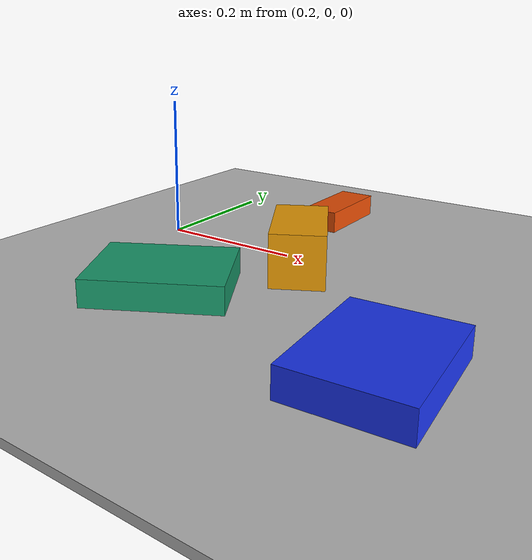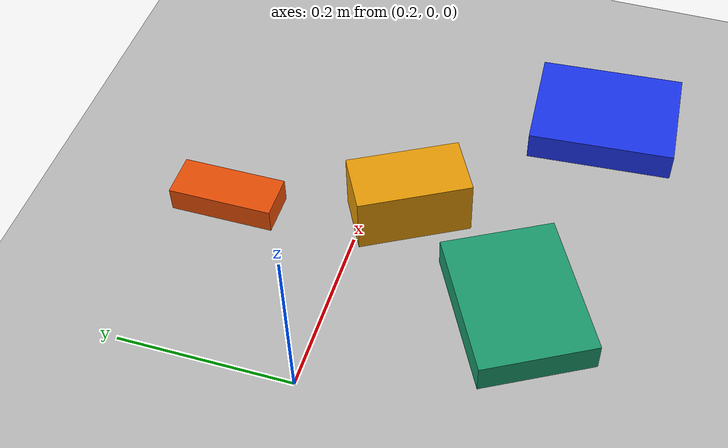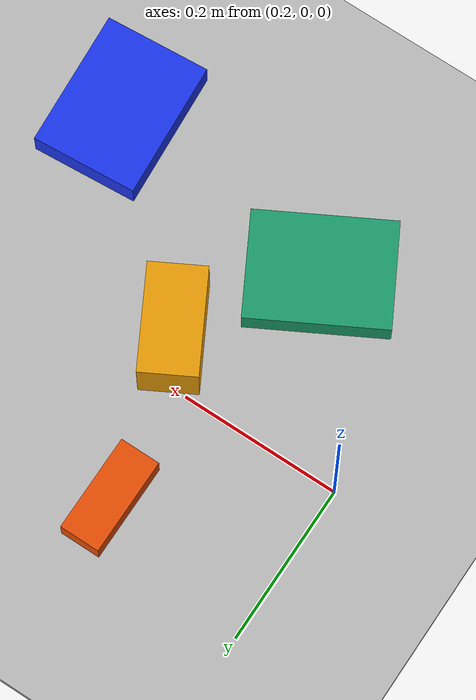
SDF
<?xml version="1.0" ?>
<sdf version="1.5">
  <world name="default">
    <scene>
      <ambient>0.4 0.4 0.4 1</ambient>
      <background>0.25 0.25 0.25 1</background>
      <shadows>true</shadows>
    </scene>
    <light type="directional" name="some_light">
      <pose>0.0 0.0 3.7 0 0 0</pose>
      <diffuse>0.7 0.7 0.7 1</diffuse>
      <specular>1 1 1 1</specular>
      <direction>0 0 -1</direction>
    </light>

    <include>
      <uri>model://ground_plane</uri>
    </include>
    <include>
      <uri>model://sun</uri>
    </include>
    <model name="table">
      <pose>0 0 0 0 0 0</pose>
      <link name="plane">
        <inertial>
          <inertia>
            <ixx>100</ixx>
            <ixy>0</ixy>
            <ixz>0</ixz>
            <iyy>100</iyy>
            <iyz>0</iyz>
            <izz>1</izz>
          </inertia>
          <mass>1000.0</mass>
        </inertial>
        <collision name="geom">
          <geometry>
            <box>
              <size>10 10 0.01</size>
            </box>
          </geometry>
        </collision>
        <visual name="visual">
          <geometry>
            <box>
              <size>10 10 0.01</size>
            </box>
          </geometry>
          <material>
            <script>Gazebo/WoodPallet</script>
          </material>
        </visual>
      </link>
      <static>true</static>
    </model>

    <model name="box_orange">
      <pose>0.4 0.15 0.03 0 0 0</pose>
      <link name="plane">
        <inertial>
          <inertia>
            <ixx>1</ixx>
            <ixy>0</ixy>
            <ixz>0</ixz>
            <iyy>1</iyy>
            <iyz>0</iyz>
            <izz>1</izz>
          </inertia>
          <mass>0.3</mass>
        </inertial>
        <collision name="geom">
          <geometry>
            <box>
              <size>0.05 0.12 0.03</size>
            </box>
          </geometry>
        </collision>
        <visual name="visual">
          <geometry>
            <box>
              <size>0.05 0.12 0.03</size>
            </box>
          </geometry>
          <material>
            <ambient>1.0 0.4 0.05 1</ambient>
            <diffuse>0.9 0.3 0.02 1</diffuse>
            <specular>0.1 0 0 0</specular>
            <emissive>0 0 0 1</emissive>
          </material>
        </visual>
      </link>
      <static>false</static>
    </model>

    <model name="box_yellow">
      <pose>0.45 -0.05 0.03 0 0 0.5</pose>
      <link name="plane">
        <inertial>
          <inertia>
            <ixx>1</ixx>
            <ixy>0</ixy>
            <ixz>0</ixz>
            <iyy>1</iyy>
            <iyz>0</iyz>
            <izz>1</izz>
          </inertia>
          <mass>0.3</mass>
        </inertial>
        <collision name="geom">
          <geometry>
            <box>
              <size>0.07 0.13 0.09</size>
            </box>
          </geometry>
        </collision>
        <visual name="visual">
          <geometry>
            <box>
              <size>0.07 0.13 0.09</size>
            </box>
          </geometry>
          <material>
            <ambient>1.0 0.9 0.05 1</ambient>
            <diffuse>0.9 0.6 0.02 1</diffuse>
            <specular>0.1 0 0 0</specular>
            <emissive>0 0 0 1</emissive>
          </material>
       </visual>
      </link>
      <static>false</static>
    </model>

    <model name="box_green">
      <pose>0.35 -0.2 0.02 0 0 0.5</pose>
      <link name="plane">
        <inertial>
          <inertia>
            <ixx>1</ixx>
            <ixy>0</ixy>
            <ixz>0</ixz>
            <iyy>1</iyy>
            <iyz>0</iyz>
            <izz>1</izz>
          </inertia>
          <mass>0.3</mass>
        </inertial>
        <collision name="geom">
          <geometry>
            <box>
              <size>0.17 0.13 0.04</size>
            </box>
          </geometry>
        </collision>
        <visual name="visual">
          <geometry>
            <box>
              <size>0.17 0.13 0.04</size>
            </box>
          </geometry>
          <material>
            <ambient>0.0 0.9 0.45 1</ambient>
            <diffuse>0.1 0.6 0.42 1</diffuse>
            <specular>0.1 0 0 0</specular>
            <emissive>0 0 0 1</emissive>
          </material>
       </visual>
      </link>
      <static>false</static>
    </model>

    <model name="box_blue">
      <pose>0.65 -0.24 0.02 0 0.0 -1.5</pose>
      <link name="plane">
        <inertial>
          <inertia>
            <ixx>1</ixx>
            <ixy>0</ixy>
            <ixz>0</ixz>
            <iyy>1</iyy>
            <iyz>0</iyz>
            <izz>1</izz>
          </inertia>
          <mass>0.3</mass>
        </inertial>
        <collision name="geom">
          <geometry>
            <box>
              <size>0.17 0.13 0.04</size>
            </box>
          </geometry>
        </collision>
        <visual name="visual">
          <geometry>
            <box>
              <size>0.17 0.13 0.04</size>
            </box>
          </geometry>
          <material>
            <ambient>0.0 0.05 0.95 1</ambient>
            <diffuse>0.1 0.2 0.92 1</diffuse>
            <specular>0.1 0 0 0</specular>
            <emissive>0 0 0 1</emissive>
          </material>
       </visual>
      </link>
      <static>false</static>
    </model>

  </world>
</sdf>
